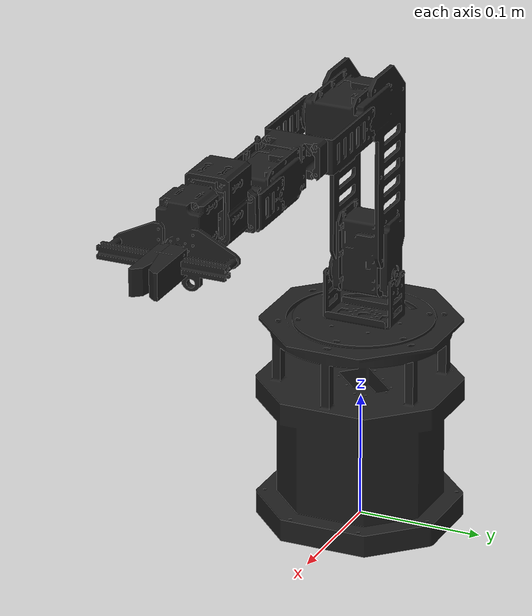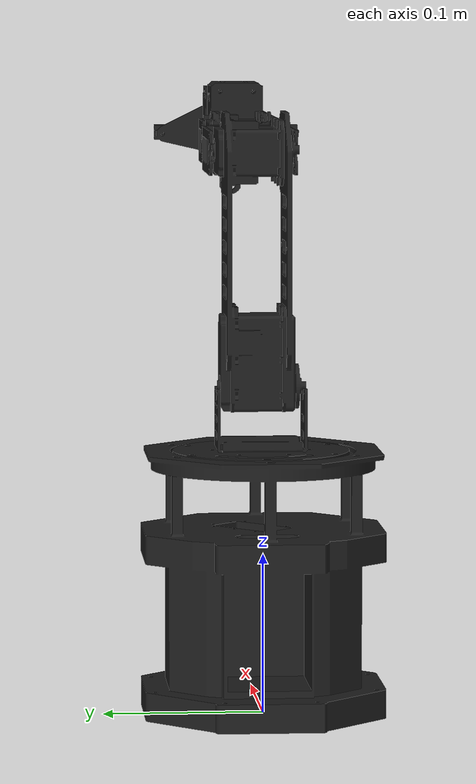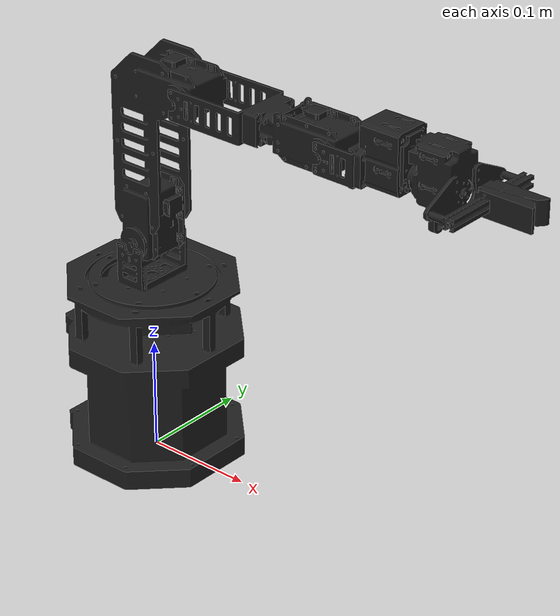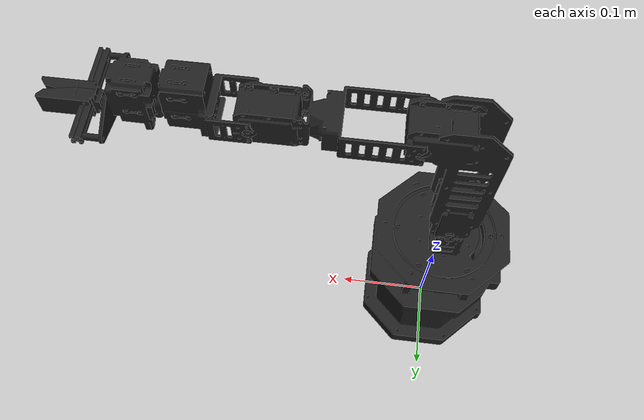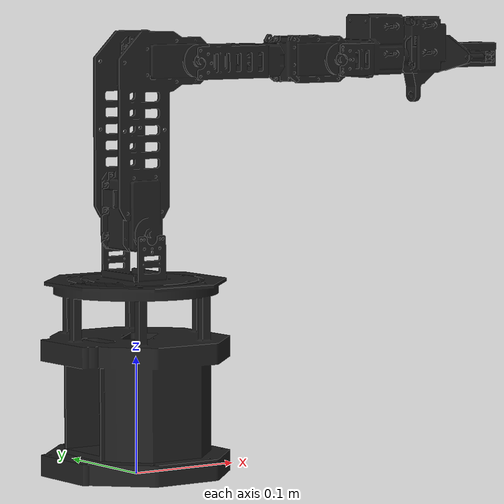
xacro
<?xml version="1.0"?>
<robot name="widowxl" xmlns:xacro="http://ros.org/wiki/xacro">

  <xacro:arg name="robot_name" default = "widowxl"/>
  <xacro:arg name="base_link_frame" default="base_link"/>
  <xacro:arg name="show_ar_tag" default="false"/>
  <xacro:arg name="show_gripper_bar" default="true"/>
  <xacro:arg name="show_gripper_fingers" default="true"/>
  <xacro:arg name="use_world_frame" default="false"/>
  <xacro:arg name="external_urdf_loc" default=""/>
  <xacro:arg name="load_gazebo_configs" default="false"/>

  <xacro:property name="urdf_loc" value="$(arg external_urdf_loc)"/>
  <xacro:property name="pi_offset" value="0.00001"/>

  <xacro:if value="$(arg load_gazebo_configs)">
    <xacro:include filename="$(find interbotix_xsarm_gazebo)/config/interbotix_texture.gazebo"/>
  </xacro:if>

  <material name="interbotix_black">
    <texture filename="package://interbotix_xsarm_descriptions/meshes/interbotix_black.png"/>
  </material>

  <xacro:if value="$(arg use_world_frame)">
    <link name="world"/>
    <joint name="fixed" type="fixed">
      <parent link="world"/>
      <child link="$(arg robot_name)/$(arg base_link_frame)"/>
    </joint>
  </xacro:if>

  <link name="$(arg robot_name)/$(arg base_link_frame)">
    <visual>
      <origin rpy="0 0 0" xyz="0 0 0"/>
      <geometry>
        <mesh filename="package://interbotix_xsarm_descriptions/meshes/meshes_widowxl/base_link.stl" scale="0.001 0.001 0.001"/>
      </geometry>
      <material name="interbotix_black"/>
    </visual>
    <collision>
      <origin rpy="0 0 0" xyz="0 0 0"/>
      <geometry>
        <mesh filename="package://interbotix_xsarm_descriptions/meshes/meshes_widowxl/base_link.stl" scale="0.001 0.001 0.001"/>
      </geometry>
    </collision>
  </link>

  <joint name="waist" type="revolute">
    <axis xyz="0 0 1"/>
    <limit effort="10" lower="-3.1415" upper="3.1415" velocity="1.571"/>
    <origin rpy="0 0 0" xyz="0 0 0.167"/>
    <parent link="$(arg robot_name)/$(arg base_link_frame)"/>
    <child link="$(arg robot_name)/shoulder_link"/>
    <dynamics friction="0.1"/>
  </joint>

  <transmission name="trans_waist">
    <type>transmission_interface/SimpleTransmission</type>
    <joint name="waist">
      <hardwareInterface>hardware_interface/EffortJointInterface</hardwareInterface>
    </joint>
    <actuator name="waist_motor">
      <mechanicalReduction>1</mechanicalReduction>
    </actuator>
  </transmission>

  <link name="$(arg robot_name)/shoulder_link">
    <visual>
      <origin rpy="0 0 0" xyz="0 0 -0.167"/>
      <geometry>
        <mesh filename="package://interbotix_xsarm_descriptions/meshes/meshes_widowxl/shoulder_link__4__1.stl" scale="0.001 0.001 0.001"/>
      </geometry>
      <material name="interbotix_black"/>
    </visual>
    <collision>
      <origin rpy="0 0 0" xyz="0 0 -0.167"/>
      <geometry>
        <mesh filename="package://interbotix_xsarm_descriptions/meshes/meshes_widowxl/shoulder_link__4__1.stl" scale="0.001 0.001 0.001"/>
      </geometry>
    </collision>
    <inertial>
      <origin rpy="0 0 0" xyz="0 0 -0.167"/>
      <mass value="0.480879" />
      <inertia ixx="0.0003790000" iyy="0.0005557000" izz="0.0005889000" ixy="0.0000000022" ixz="-0.0000003561" iyz="0.0000012245" />
    </inertial>
  </link>

  <joint name="shoulder" type="revolute">
    <axis xyz="0 1 0"/>
    <limit effort="20" lower="-1.571" upper="1.571" velocity="1.571"/>
    <origin rpy="0 0 0" xyz="0 0 0.0367"/>
    <parent link="$(arg robot_name)/shoulder_link"/>
    <child link="$(arg robot_name)/upper_arm_link"/>
    <dynamics friction="0.1"/>
  </joint>

  <transmission name="trans_shoulder">
    <type>transmission_interface/SimpleTransmission</type>
    <joint name="shoulder">
      <hardwareInterface>hardware_interface/EffortJointInterface</hardwareInterface>
    </joint>
    <actuator name="shoulder_motor">
      <mechanicalReduction>1</mechanicalReduction>
    </actuator>
  </transmission>

  <link name="$(arg robot_name)/upper_arm_link">
    <visual>
      <origin rpy="0 0 0" xyz="0 0 -0.2"/>
      <geometry>
        <mesh filename="package://interbotix_xsarm_descriptions/meshes/meshes_widowxl/biceps_link_1.stl" scale="0.001 0.001 0.001"/>
      </geometry>
      <material name="interbotix_black"/>
    </visual>
    <collision>
      <origin rpy="0 0 0" xyz="0 0 -0.2"/>
      <geometry>
        <mesh filename="package://interbotix_xsarm_descriptions/meshes/meshes_widowxl/biceps_link_1.stl" scale="0.001 0.001 0.001"/>
      </geometry>
    </collision>
    <inertial>
      <origin rpy="0 0 0" xyz="0 0 -0.2"/>
      <mass value="0.430811" />
      <inertia ixx="0.0034630000" iyy="0.0035870000" izz="0.0004566000" ixy="-0.0000000001" ixz="-0.0000000002" iyz="0.0004272000" />
    </inertial>
  </link>

  <joint name="elbow" type="revolute">
    <axis xyz="0 1 0"/>
    <limit effort="15" lower="-1.571" upper="1.571" velocity="1.571"/>
    <origin rpy="0 0 0" xyz="0.05 0 0.145"/>
    <parent link="$(arg robot_name)/upper_arm_link"/>
    <child link="$(arg robot_name)/forearm_link"/>
    <dynamics friction="0.1"/>
  </joint>

  <transmission name="trans_elbow">
    <type>transmission_interface/SimpleTransmission</type>
    <joint name="elbow">
      <hardwareInterface>hardware_interface/EffortJointInterface</hardwareInterface>
    </joint>
    <actuator name="elbow_motor">
      <mechanicalReduction>1</mechanicalReduction>
    </actuator>
  </transmission>

  <link name="$(arg robot_name)/forearm_link">
    <visual>
      <origin rpy="0 0 0" xyz="-0.05 0 -0.347"/>
      <geometry>
        <mesh filename="package://interbotix_xsarm_descriptions/meshes/meshes_widowxl/forearm_link_1.stl" scale="0.001 0.001 0.001"/>
      </geometry>
      <material name="interbotix_black"/>
    </visual>
    <collision>
      <origin rpy="0 0 0" xyz="-0.05 0 -0.347"/>
      <geometry>
        <mesh filename="package://interbotix_xsarm_descriptions/meshes/meshes_widowxl/forearm_link_1.stl" scale="0.001 0.001 0.001"/>
      </geometry>
    </collision>
    <inertial>
      <origin rpy="0 0 0" xyz="-0.05 0 -0.347"/>
      <mass value="0.297673" />
      <inertia ixx="0.0021760000" iyy="0.0000575700" izz="0.0021860000" ixy="-0.0000030658" ixz="0.0000000000" iyz="0.0000000000" />
    </inertial>
  </link>

 <joint name="wrist_angle" type="revolute">
    <axis xyz="0 1 0"/>
    <limit effort="5" lower="-1.745" upper="1.745" velocity="1.571"/>
    <origin rpy="0 0 0" xyz="0.15 0 0"/>
    <parent link="$(arg robot_name)/forearm_link"/>
    <child link="$(arg robot_name)/wrist_link"/>
    <dynamics friction="0.1"/>
  </joint>

  <transmission name="trans_wrist_angle">
    <type>transmission_interface/SimpleTransmission</type>
    <joint name="wrist_angle">
      <hardwareInterface>hardware_interface/EffortJointInterface</hardwareInterface>
    </joint>
    <actuator name="wrist_angle_motor">
      <mechanicalReduction>1</mechanicalReduction>
    </actuator>
  </transmission>

  <link name="$(arg robot_name)/wrist_link">
    <visual>
      <origin rpy="0 0 0" xyz="-0.2 0 -0.347"/>
      <geometry>
        <mesh filename="package://interbotix_xsarm_descriptions/meshes/meshes_widowxl/wrist_1_1.stl" scale="0.001 0.001 0.001"/>
      </geometry>
      <material name="interbotix_black"/>
    </visual>
    <collision>
      <origin rpy="0 0 0" xyz="-0.2 0 -0.347"/>
      <geometry>
        <mesh filename="package://interbotix_xsarm_descriptions/meshes/meshes_widowxl/wrist_1_1.stl" scale="0.001 0.001 0.001"/>
      </geometry>
    </collision>
    <inertial>
      <origin rpy="0 0 0" xyz="-0.2 0 -0.347"/>
      <mass value="0.084957" />
      <inertia ixx="0.0000308200" iyy="0.0000282200" izz="0.0000315200" ixy="0.0000000191" ixz="0.0000000023" iyz="0.0000025481" />
    </inertial>
  </link>

  <joint name="wrist_rotate" type="revolute">
    <axis xyz="1 0 0"/>
    <limit effort="1" lower="-2.167" upper="2.167" velocity="1.571"/>
    <origin rpy="0 0 0" xyz="0.08 0 0"/>
    <parent link="$(arg robot_name)/wrist_link"/>
    <child link="$(arg robot_name)/wrist_2_link"/>
    <dynamics friction="0.1"/>
  </joint>

  <transmission name="trans_wrist_rotate">
    <type>transmission_interface/SimpleTransmission</type>
    <joint name="wrist_rotate">
      <hardwareInterface>hardware_interface/EffortJointInterface</hardwareInterface>
    </joint>
    <actuator name="wrist_rotate_motor">
      <mechanicalReduction>1</mechanicalReduction>
    </actuator>
  </transmission>

  <link name="$(arg robot_name)/wrist_2_link">
    <visual>
      <origin rpy="0 0 0" xyz="-0.28 0.0 -0.347"/>
      <geometry>
        <mesh filename="package://interbotix_xsarm_descriptions/meshes/meshes_widowxl/wrist_2_1.stl" scale="0.001 0.001 0.001"/>
      </geometry>
      <material name="interbotix_black"/>
    </visual>
    <collision>
      <origin rpy="0 0 0" xyz="-0.28 0.0 -0.347"/>
      <geometry>
        <mesh filename="package://interbotix_xsarm_descriptions/meshes/meshes_widowxl/wrist_2_1.stl" scale="0.001 0.001 0.001"/>
      </geometry>
    </collision>
    <inertial>
      <origin rpy="0 0 0" xyz="-0.28 0.0 -0.347"/>
      <mass value="0.072885" />
      <inertia ixx="0.0000253700" iyy="0.0000183600" izz="0.0000167400" ixy="0.0000000000" ixz="0.0000000000" iyz="0.0000004340" />
    </inertial>
  </link>

  <joint name="ee_arm" type="fixed">
    <axis xyz="1 0 0"/>
    <origin rpy="0 0 0" xyz="0.043 0 0"/>
    <parent link="$(arg robot_name)/wrist_2_link"/>
    <child link="$(arg robot_name)/ee_arm_link"/>
  </joint>

  <link name="$(arg robot_name)/ee_arm_link">
    <inertial>
      <mass value="0.001" />
      <inertia ixx="0.001" iyy="0.001" izz="0.001" ixy="0" ixz="0" iyz="0" />
    </inertial>
  </link>

  <joint name="gripper" type="continuous">
    <axis xyz="1 0 0"/>
    <limit effort="10" velocity="${pi}"/>
    <origin rpy="0 0 0" xyz="0.0055 0 0"/>
    <parent link="$(arg robot_name)/ee_arm_link"/>
    <child link="$(arg robot_name)/gripper_prop_link"/>
    <dynamics friction="0.1"/>
  </joint>

  <transmission name="trans_gripper">
    <type>transmission_interface/SimpleTransmission</type>
    <joint name="gripper">
      <hardwareInterface>hardware_interface/EffortJointInterface</hardwareInterface>
    </joint>
    <actuator name="gripper_motor">
      <mechanicalReduction>1</mechanicalReduction>
    </actuator>
  </transmission>

  <link name="$(arg robot_name)/gripper_prop_link">
    <inertial>
      <mass value="0.00434" />
      <inertia ixx="0.0000005923" iyy="0.0000011156" izz="0.0000005743" ixy="0.0000000000" ixz="0.0000003195" iyz="-0.0000000004" />
    </inertial>
  </link>

  <!-- If the AR tag is being used, then add the AR tag mount -->

  <xacro:if value="$(arg show_ar_tag)">

    <joint name="ar_tag" type="fixed">
      <axis xyz="0 0 0"/>
      <origin rpy="0 0 0" xyz="-0.017 0 0.04155"/>
      <parent link="$(arg robot_name)/ee_arm_link"/>
      <child link="$(arg robot_name)/ar_tag_link"/>
    </joint>

    <link name="$(arg robot_name)/ar_tag_link">
      <visual>
        <origin rpy="0 0 0" xyz="0 0 0"/>
        <geometry>
          <mesh filename="package://interbotix_xsarm_descriptions/meshes/wx250_meshes/wx250_10_ar_tag.stl" scale="0.001 0.001 0.001"/>
        </geometry>
        <material name="interbotix_black"/>
      </visual>
      <collision>
        <origin rpy="0 0 0" xyz="0 0 0"/>
        <geometry>
          <mesh filename="package://interbotix_xsarm_descriptions/meshes/wx250_meshes/wx250_10_ar_tag.stl" scale="0.001 0.001 0.001"/>
        </geometry>
      </collision>
      <inertial>
        <origin rpy="0 0 0" xyz="0 0 -0.00315"/>
        <mass value="0.016507"/>
        <inertia ixx="0.000003084" ixy="0" ixz="0" iyy="0.000003084" iyz="0" izz="0.000006059"/>
      </inertial>
    </link>

  </xacro:if>

  <!-- If the gripper bar is being used, then also add the gripper bar -->

  <xacro:if value="$(arg show_gripper_bar)">

    <joint name="gripper_bar" type="fixed">
      <axis xyz="1 0 0"/>
      <origin rpy="0 0 0" xyz="0 0 0"/>
      <parent link="$(arg robot_name)/ee_arm_link"/>
      <child link="$(arg robot_name)/gripper_bar_link"/>
    </joint>

    <link name="$(arg robot_name)/gripper_bar_link">
      <inertial>
        <origin rpy="0 0 ${pi/2}" xyz="0.0096870000 0.0000008177 0.0049620000"/>
        <mass value="0.034199" />
        <inertia ixx="0.0000074125" iyy="0.0000284300" izz="0.0000286000" ixy="-0.0000000008" ixz="-0.0000000006" iyz="-0.0000013889" />
      </inertial>
    </link>

    <joint name="ee_bar" type="fixed">
      <axis xyz="1 0 0"/>
      <origin rpy="0 0 0" xyz="0.023 0 0"/>
      <parent link="$(arg robot_name)/gripper_bar_link"/>
      <child link="$(arg robot_name)/fingers_link"/>
    </joint>

    <link name="$(arg robot_name)/fingers_link">
      <inertial>
        <mass value="0.001" />
        <inertia ixx="0.001" iyy="0.001" izz="0.001" ixy="0" ixz="0" iyz="0" />
      </inertial>
    </link>

    <!-- If the gripper fingers are being used, add those as well -->

    <xacro:if value="$(arg show_gripper_fingers)">

      <joint name="left_finger" type="prismatic">
        <axis xyz="0 1 0"/>
        <limit effort="20" lower="0.0001" upper="0.071" velocity="1"/>
        <origin rpy="0 0 0" xyz="0 -0.035 0"/>
        <parent link="$(arg robot_name)/fingers_link"/>
        <child link="$(arg robot_name)/left_finger_link"/>
        <dynamics friction="0.1"/>
      </joint>

      <transmission name="trans_left_finger">
        <type>transmission_interface/SimpleTransmission</type>
        <joint name="left_finger">
          <hardwareInterface>hardware_interface/EffortJointInterface</hardwareInterface>
        </joint>
        <actuator name="left_finger_motor">
          <mechanicalReduction>1</mechanicalReduction>
        </actuator>
      </transmission>

      <link name="$(arg robot_name)/left_finger_link">
        <visual>
          <origin rpy="0 0 0" xyz="-0.346 -0.007 -0.347"/>
          <geometry>
            <mesh filename="package://interbotix_xsarm_descriptions/meshes/meshes_widowxl/finger.stl" scale="0.001 0.001 0.001"/>
          </geometry>
          <material name="interbotix_black"/>
        </visual>
        <collision>
          <origin rpy="0 0 0" xyz="-0.346 -0.007 -0.347"/>
          <geometry>
            <mesh filename="package://interbotix_xsarm_descriptions/meshes/meshes_widowxl/finger.stl" scale="0.001 0.001 0.001"/>
          </geometry>
        </collision>
        <inertial>
          <origin rpy="0 0 0" xyz="-0.346 -0.007 -0.347"/>
           <mass value="0.016246" />
          <inertia ixx="0.0000047310" iyy="0.0000015506" izz="0.0000037467" ixy="-0.0000004560" ixz="0.0000000000" iyz="0.0000000000" />
        </inertial>
      </link>

      <joint name="right_finger" type="prismatic">
        <axis xyz="0 1 0"/>
        <limit effort="5" lower="-0.037" upper="-0.015" velocity="1"/>
        <origin rpy="0 0 0" xyz="0 0.035 0"/>
        <parent link="$(arg robot_name)/fingers_link"/>
        <child link="$(arg robot_name)/right_finger_link"/>
        <dynamics friction="0.1"/>
        <xacro:unless value="$(arg load_gazebo_configs)">
          <mimic joint="left_finger" multiplier="-1" offset="0"/>
        </xacro:unless>
      </joint>

      <transmission name="trans_right_finger">
        <type>transmission_interface/SimpleTransmission</type>
        <joint name="right_finger">
          <hardwareInterface>hardware_interface/EffortJointInterface</hardwareInterface>
        </joint>
        <actuator name="right_finger_motor">
          <mechanicalReduction>1</mechanicalReduction>
        </actuator>
      </transmission>

      <link name="$(arg robot_name)/right_finger_link">
        <visual>
          <origin rpy="-3.1415 0 0" xyz="-0.346 0.007 0.345"/>
          <geometry>
            <mesh filename="package://interbotix_xsarm_descriptions/meshes/meshes_widowxl/finger.stl" scale="0.001 0.001 0.001"/>
          </geometry>
          <material name="interbotix_black"/>
        </visual>
        <collision>
          <origin rpy="-3.1415 0 0" xyz="-0.346 0.007 0.345"/>
          <geometry>
            <mesh filename="package://interbotix_xsarm_descriptions/meshes/meshes_widowxl/finger.stl" scale="0.001 0.001 0.001"/>
          </geometry>
        </collision>
        <inertial>
          <origin rpy="-3.1415 0 0" xyz="-0.346 0.007 0.345"/>
          <mass value="0.016246" />
          <inertia ixx="0.0000047310" iyy="0.0000015506" izz="0.0000037467" ixy="0.0000004560" ixz="0.0000000000" iyz="0.0000000000" />
        </inertial>
      </link>

      <joint name="ee_gripper" type="fixed">
        <axis xyz="1 0 0"/>
        <origin rpy="0 0 0" xyz="0.027575 0 0"/>
        <parent link="$(arg robot_name)/fingers_link"/>
        <child link="$(arg robot_name)/ee_gripper_link"/>
      </joint>

      <link name="$(arg robot_name)/ee_gripper_link">
        <inertial>
          <mass value="0.001" />
          <inertia ixx="0.001" iyy="0.001" izz="0.001" ixy="0" ixz="0" iyz="0" />
        </inertial>
      </link>

    </xacro:if>

  </xacro:if>

  <xacro:if value="${urdf_loc != ''}">
    <xacro:include filename="${urdf_loc}"/>
  </xacro:if>

</robot>
